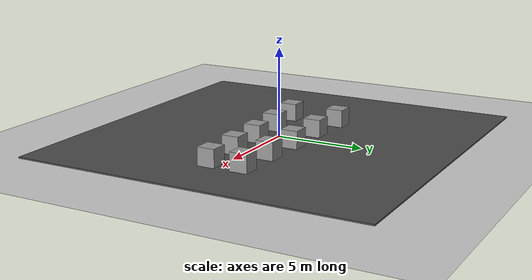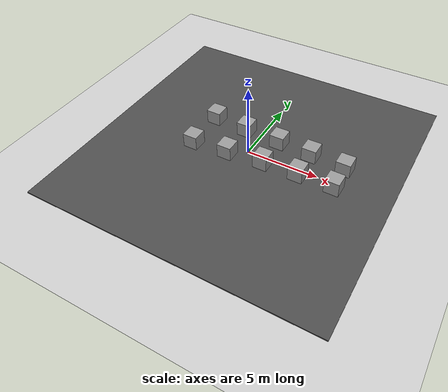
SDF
<sdf version="1.6">
 <world name="default">
  <light name="sun" type="directional">
   <pose>0 0 10 0 -0 0</pose>
   <diffuse>0.8 0.8 0.8 1</diffuse>
   <specular>0.2 0.2 0.2 1</specular>
   <attenuation>
    <range>1000</range>
    <constant>0.9</constant>
    <linear>0.01</linear>
    <quadratic>0.001</quadratic>
   </attenuation>
   <direction>-0.5 0.1 -0.9</direction>
  </light>
  <model name="ground_plane">
   <static>1</static>
   <link name="link">
    <collision name="collision">
     <geometry><plane><normal>0 0 1</normal><size>100 100</size></plane></geometry>
     <surface>
      <contact><collide_bitmask>65535</collide_bitmask></contact>
      <friction><ode><mu>100</mu><mu2>50</mu2></ode></friction>
     </surface>
    </collision>
    <visual name="visual">
     <cast_shadows>0</cast_shadows>
     <geometry><plane><normal>0 0 1</normal><size>100 100</size></plane></geometry>
     <material>
      <script><uri>file://media/materials/scripts/gazebo.material</uri><name>Gazebo/Grey</name></script>
     </material>
    </visual>
   </link>
  </model>
  <gravity>0 0 -9.8</gravity>
  <magnetic_field>6e-06 2.3e-05 -4.2e-05</magnetic_field>
  <atmosphere type="adiabatic"/>
  <physics name="default_physics" default="0" type="ode">
   <max_step_size>0.001</max_step_size>
   <real_time_factor>1</real_time_factor>
   <real_time_update_rate>1000</real_time_update_rate>
   <gravity>0 0 -9.8</gravity>
  </physics>
  <scene><ambient>0.4 0.4 0.4 1</ambient><background>0.7 0.7 0.7 1</background><shadows>1</shadows></scene>
  <audio><device>default</device></audio>
  <spherical_coordinates>
   <surface_model>EARTH_WGS84</surface_model>
   <latitude_deg>0</latitude_deg>
   <longitude_deg>0</longitude_deg>
   <elevation>0</elevation>
   <heading_deg>0</heading_deg>
  </spherical_coordinates>
  <model name="unit_box_0">
   <pose>6.29748 1.36741 0.550002 -4e-06 0 7e-06</pose>
   <link name="link">
    <inertial>
     <mass>1</mass>
     <inertia>
      <ixx>0.166667</ixx>
      <ixy>0</ixy>
      <ixz>0</ixz>
      <iyy>0.166667</iyy>
      <iyz>0</iyz>
      <izz>0.166667</izz>
     </inertia>
    </inertial>
    <collision name="collision"><geometry><box><size>1 1 1</size></box></geometry></collision>
    <visual name="visual">
     <geometry><box><size>1 1 1</size></box></geometry>
     <material>
      <script><name>Gazebo/Grey</name><uri>file://media/materials/scripts/gazebo.material</uri></script>
     </material>
    </visual>
   </link>
  </model>
  <model name="unit_box_0_clone_0">
   <pose>6.30793 -0.499724 0.549995 0 1e-05 -0.011441</pose>
   <link name="link">
    <inertial>
     <mass>1</mass>
     <inertia>
      <ixx>0.166667</ixx>
      <ixy>0</ixy>
      <ixz>0</ixz>
      <iyy>0.166667</iyy>
      <iyz>0</iyz>
      <izz>0.166667</izz>
     </inertia>
    </inertial>
    <collision name="collision"><geometry><box><size>1 1 1</size></box></geometry></collision>
    <visual name="visual">
     <geometry><box><size>1 1 1</size></box></geometry>
     <material>
      <script><name>Gazebo/Grey</name><uri>file://media/materials/scripts/gazebo.material</uri></script>
     </material>
    </visual>
   </link>
  </model>
  <model name="unit_box_0_clone">
   <pose>3.87626 1.49928 0.55 -0 -0 -0.001017</pose>
   <link name="link">
    <inertial>
     <mass>1</mass>
     <inertia>
      <ixx>0.166667</ixx>
      <ixy>0</ixy>
      <ixz>0</ixz>
      <iyy>0.166667</iyy>
      <iyz>0</iyz>
      <izz>0.166667</izz>
     </inertia>
    </inertial>
    <collision name="collision"><geometry><box><size>1 1 1</size></box></geometry></collision>
    <visual name="visual">
     <geometry><box><size>1 1 1</size></box></geometry>
     <material>
      <script><name>Gazebo/Grey</name><uri>file://media/materials/scripts/gazebo.material</uri></script>
     </material>
    </visual>
   </link>
  </model>
  <model name="unit_box_0_clone_1">
   <pose>3.87684 -0.57288 0.55 0 -0 5e-06</pose>
   <link name="link">
    <inertial>
     <mass>1</mass>
     <inertia>
      <ixx>0.166667</ixx>
      <ixy>0</ixy>
      <ixz>0</ixz>
      <iyy>0.166667</iyy>
      <iyz>0</iyz>
      <izz>0.166667</izz>
     </inertia>
    </inertial>
    <collision name="collision"><geometry><box><size>1 1 1</size></box></geometry></collision>
    <visual name="visual">
     <geometry><box><size>1 1 1</size></box></geometry>
     <material>
      <script><name>Gazebo/Grey</name><uri>file://media/materials/scripts/gazebo.material</uri></script>
     </material>
    </visual>
   </link>
  </model>
  <model name="unit_box_0_clone_2">
   <pose>1.46989 1.62537 0.55 -0 -0 -0.004111</pose>
   <link name="link">
    <inertial>
     <mass>1</mass>
     <inertia>
      <ixx>0.166667</ixx>
      <ixy>0</ixy>
      <ixz>0</ixz>
      <iyy>0.166667</iyy>
      <iyz>0</iyz>
      <izz>0.166667</izz>
     </inertia>
    </inertial>
    <collision name="collision"><geometry><box><size>1 1 1</size></box></geometry></collision>
    <visual name="visual">
     <geometry><box><size>1 1 1</size></box></geometry>
     <material>
      <script><name>Gazebo/Grey</name><uri>file://media/materials/scripts/gazebo.material</uri></script>
     </material>
    </visual>
   </link>
  </model>
  <model name="unit_box_0_clone_3">
   <pose>1.4264 -0.678445 0.55 0 -0 5e-06</pose>
   <link name="link">
    <inertial>
     <mass>1</mass>
     <inertia>
      <ixx>0.166667</ixx>
      <ixy>0</ixy>
      <ixz>0</ixz>
      <iyy>0.166667</iyy>
      <iyz>0</iyz>
      <izz>0.166667</izz>
     </inertia>
    </inertial>
    <collision name="collision"><geometry><box><size>1 1 1</size></box></geometry></collision>
    <visual name="visual">
     <geometry><box><size>1 1 1</size></box></geometry>
     <material>
      <script><name>Gazebo/Grey</name><uri>file://media/materials/scripts/gazebo.material</uri></script>
     </material>
    </visual>
   </link>
  </model>
  <model name="unit_box_0_clone_4">
   <pose>-1.0837 1.69276 0.55 0 -0 5e-06</pose>
   <link name="link">
    <inertial>
     <mass>1</mass>
     <inertia>
      <ixx>0.166667</ixx>
      <ixy>0</ixy>
      <ixz>0</ixz>
      <iyy>0.166667</iyy>
      <iyz>0</iyz>
      <izz>0.166667</izz>
     </inertia>
    </inertial>
    <collision name="collision"><geometry><box><size>1 1 1</size></box></geometry></collision>
    <visual name="visual">
     <geometry><box><size>1 1 1</size></box></geometry>
     <material>
      <script><name>Gazebo/Grey</name><uri>file://media/materials/scripts/gazebo.material</uri></script>
     </material>
    </visual>
   </link>
  </model>
  <model name="unit_box_0_clone_5">
   <pose>-1.0837 -0.910582 0.55 0 -0 5e-06</pose>
   <link name="link">
    <inertial>
     <mass>1</mass>
     <inertia>
      <ixx>0.166667</ixx>
      <ixy>0</ixy>
      <ixz>0</ixz>
      <iyy>0.166667</iyy>
      <iyz>0</iyz>
      <izz>0.166667</izz>
     </inertia>
    </inertial>
    <collision name="collision"><geometry><box><size>1 1 1</size></box></geometry></collision>
    <visual name="visual">
     <geometry><box><size>1 1 1</size></box></geometry>
     <material>
      <script><name>Gazebo/Grey</name><uri>file://media/materials/scripts/gazebo.material</uri></script>
     </material>
    </visual>
   </link>
  </model>
  <model name="unit_box_0_clone_6">
   <pose>-3.59133 1.8698 0.55 0 -0 5e-06</pose>
   <link name="link">
    <inertial>
     <mass>1</mass>
     <inertia>
      <ixx>0.166667</ixx>
      <ixy>0</ixy>
      <ixz>0</ixz>
      <iyy>0.166667</iyy>
      <iyz>0</iyz>
      <izz>0.166667</izz>
     </inertia>
    </inertial>
    <collision name="collision"><geometry><box><size>1 1 1</size></box></geometry></collision>
    <visual name="visual">
     <geometry><box><size>1 1 1</size></box></geometry>
     <material>
      <script><name>Gazebo/Grey</name><uri>file://media/materials/scripts/gazebo.material</uri></script>
     </material>
    </visual>
   </link>
  </model>
  <model name="unit_box_0_clone_7">
   <pose>-3.59133 -1.11062 0.55 0 -0 5e-06</pose>
   <link name="link">
    <inertial>
     <mass>1</mass>
     <inertia>
      <ixx>0.166667</ixx>
      <ixy>0</ixy>
      <ixz>0</ixz>
      <iyy>0.166667</iyy>
      <iyz>0</iyz>
      <izz>0.166667</izz>
     </inertia>
    </inertial>
    <collision name="collision"><geometry><box><size>1 1 1</size></box></geometry></collision>
    <visual name="visual">
     <geometry><box><size>1 1 1</size></box></geometry>
     <material>
      <script><name>Gazebo/Grey</name><uri>file://media/materials/scripts/gazebo.material</uri></script>
     </material>
    </visual>
   </link>
  </model>
  <model name="asphalt_plane">
   <static>1</static>
   <link name="link">
    <collision name="collision"><geometry><box><size>20 20 0.1</size></box></geometry></collision>
    <visual name="visual">
     <cast_shadows>0</cast_shadows>
     <geometry><box><size>20 20 0.1</size></box></geometry>
     <material>
      <script>
       <uri>model://asphalt_plane/materials/scripts</uri>
       <uri>model://asphalt_plane/materials/textures</uri>
       <name>vrc/asphalt</name>
      </script>
     </material>
    </visual>
   </link>
   <pose>-0.020312 0.037428 0 0 -0 0</pose>
  </model>
  <light name="user_point_light_0" type="point">
   <pose>8.59755 0.42097 1 0 -0 0</pose>
   <diffuse>0.5 0.5 0.5 1</diffuse>
   <specular>0.1 0.1 0.1 1</specular>
   <attenuation>
    <range>20</range>
    <constant>0.5</constant>
    <linear>0.01</linear>
    <quadratic>0.001</quadratic>
   </attenuation>
   <cast_shadows>0</cast_shadows>
   <direction>0 0 -1</direction>
  </light>
 </world>
</sdf>
